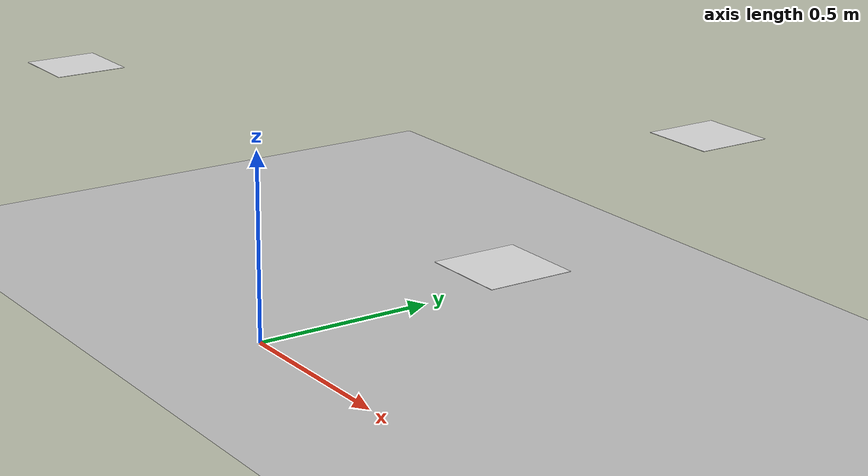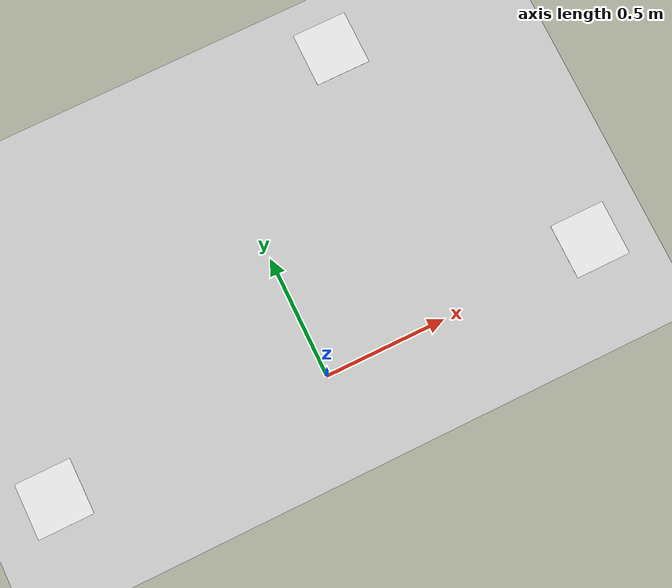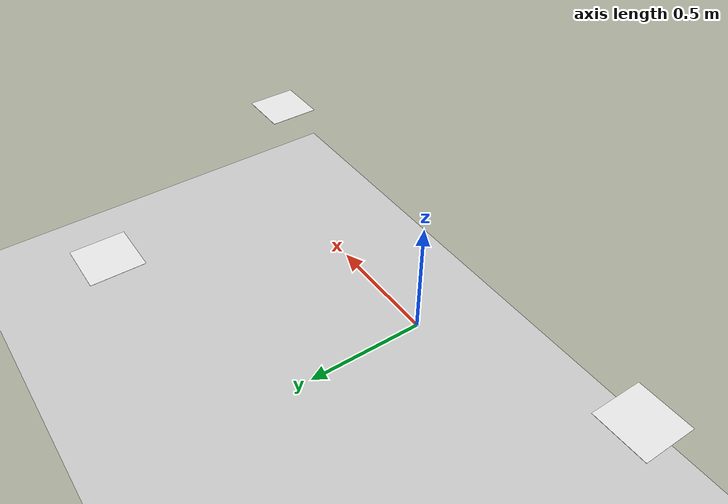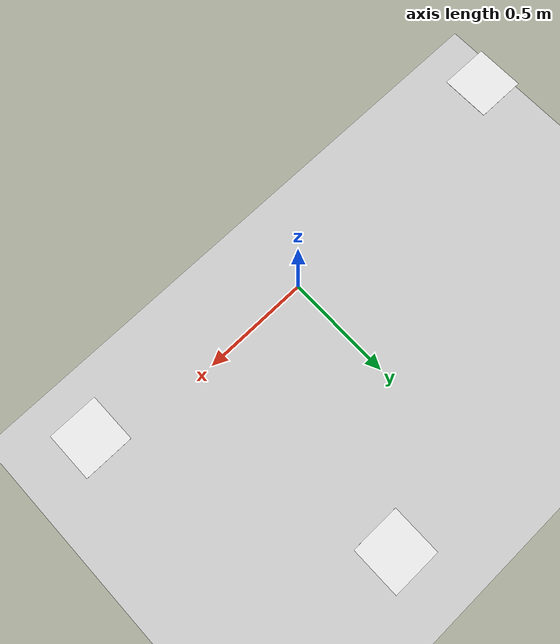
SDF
<?xml version="1.0"?>
<sdf version="1.6">
  <world name="apriltag_world">

    <!-- Physics -->
    <physics type="ode">
      <max_step_size>0.001</max_step_size>
      <real_time_factor>1</real_time_factor>
      <real_time_update_rate>1000</real_time_update_rate>
    </physics>

    <!-- Lighting -->
    <include>
      <uri>model://sun</uri>
    </include>

    <!-- Ground Plane -->
    <include>
      <uri>model://ground_plane</uri>
    </include>

    <!-- AprilTag 0: Front (1m ahead) -->
    <model name="apriltag_0">
      <static>true</static>
      <pose>1.0 0.0 0.5 0 0 3.14159</pose>
      <link name="link">
        <visual name="visual">
          <geometry>
            <box>
              <size>0.20 0.20 0.001</size>
            </box>
          </geometry>
          <material>
            <script>
              <uri>file://media/materials/scripts/gazebo.material</uri>
              <name>Gazebo/White</name>
            </script>
          </material>
        </visual>
        <collision name="collision">
          <geometry>
            <box>
              <size>0.20 0.20 0.001</size>
            </box>
          </geometry>
        </collision>
      </link>
    </model>

    <!-- AprilTag 1: Right side -->
    <model name="apriltag_1">
      <static>true</static>
      <pose>0.5 1.0 0.5 0 0 -1.5708</pose>
      <link name="link">
        <visual name="visual">
          <geometry>
            <box>
              <size>0.20 0.20 0.001</size>
            </box>
          </geometry>
          <material>
            <script>
              <uri>file://media/materials/scripts/gazebo.material</uri>
              <name>Gazebo/White</name>
            </script>
          </material>
        </visual>
        <collision name="collision">
          <geometry>
            <box>
              <size>0.20 0.20 0.001</size>
            </box>
          </geometry>
        </collision>
      </link>
    </model>

    <!-- AprilTag 2: Left side -->
    <model name="apriltag_2">
      <static>true</static>
      <pose>-1.0 0.0 0.5 0 0 1.5708</pose>
      <link name="link">
        <visual name="visual">
          <geometry>
            <box>
              <size>0.20 0.20 0.001</size>
            </box>
          </geometry>
          <material>
            <script>
              <uri>file://media/materials/scripts/gazebo.material</uri>
              <name>Gazebo/White</name>
            </script>
          </material>
        </visual>
        <collision name="collision">
          <geometry>
            <box>
              <size>0.20 0.20 0.001</size>
            </box>
          </geometry>
        </collision>
      </link>
    </model>

  </world>
</sdf>
